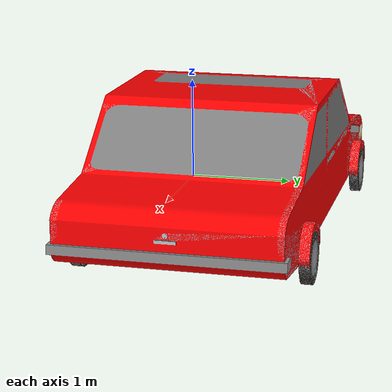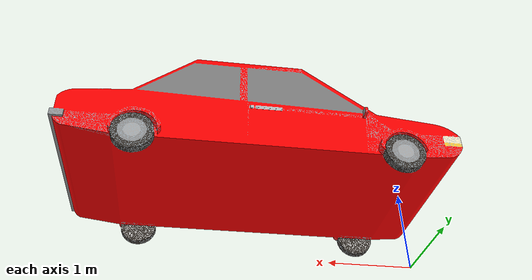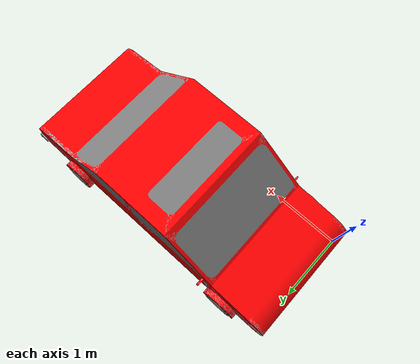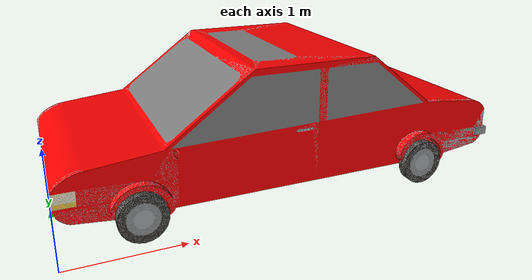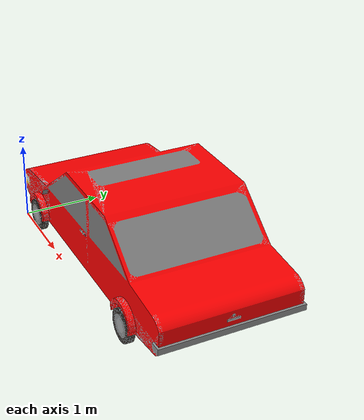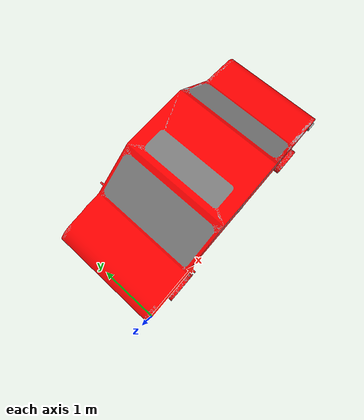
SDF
<?xml version='1.0'?>
<sdf version='1.4'>
  <model name="car">
    <static>false</static>
    <link name="link">
      <collision name='collision'>
        <pose>0 0 1 0 0 0</pose>
        <geometry>
	  <box>
		  <size>1 1 1</size>
	  </box>
        </geometry>
      </collision>

      <visual name='visual'>
        <pose>0 0 0 0 0 0</pose>
        <geometry>
          <mesh>
            <uri>model://car/meshes/model.dae</uri>
            <scale>0.75 0.75 0.75</scale>
          </mesh>
        </geometry>
      </visual>
    </link>

  </model>
</sdf>
